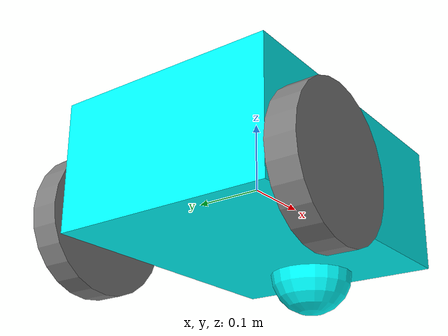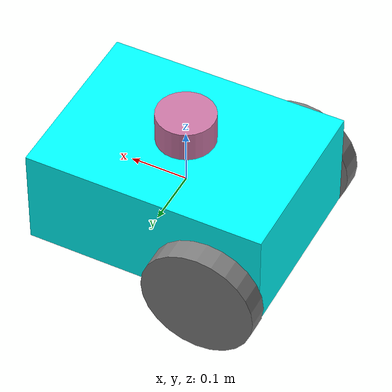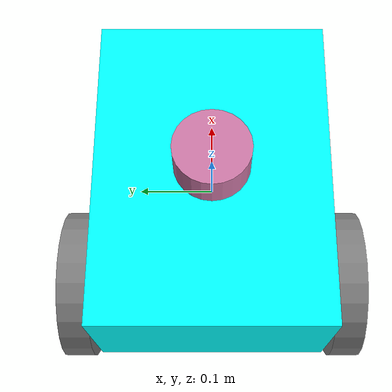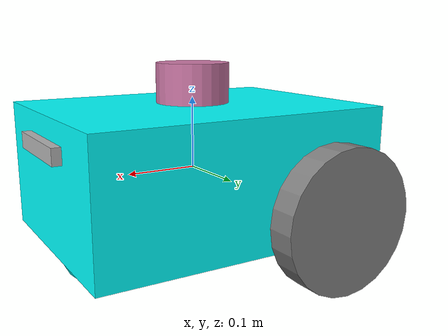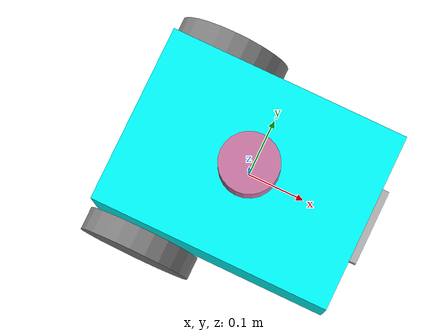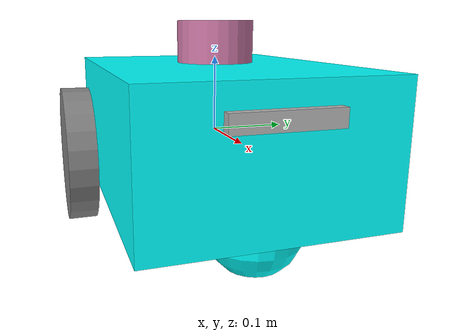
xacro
<?xml version="1.0"?>
<robot xmlns:xacro="http://www.ros.org/wiki/xacro" name="robot_2wd">

  <!-- Robot Model-->
  <xacro:include filename="robot_model.xacro"/>

  <!-- Control Plugins -->

  <!-- Gazebo Controller -->
  <xacro:include filename="control/gazebo_control.xacro"/>

  <!-- Gazebo2 Controller -->

  <!-- Sensor Plugins -->

  <!-- IMU gazebo plugin -->
  <xacro:include filename="sensors/gazebo_imu.xacro"/>

  <!-- Lidar 2D -->
  <xacro:include filename="sensors/gazebo_lidar.xacro"/>

  <!-- Camera -->

  <!-- Depth Camera -->
  <xacro:include filename="sensors/gazebo_depth_camera.xacro"/>

</robot>

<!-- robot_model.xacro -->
<robot xmlns:xacro="http://www.ros.org/wiki/xacro" >

    <!-- Including files -->

    <!-- Include material colors -->
    <xacro:include filename="material.xacro"/>
    <!-- Include inertial macros -->
    <xacro:include filename="macros/inertial.xacro"/>
    <!-- Include wheel macros -->
    <xacro:include filename="macros/wheel.xacro"/>

    <!-- Define robot constants -->

    <!-- Robot base constants -->
    <xacro:property name="base_width" value="0.31"/>
    <xacro:property name="base_length" value="0.42"/>
    <xacro:property name="base_height" value="0.18"/>
    <!-- Robot wheels constants -->
    <xacro:property name="wheel_radius" value="0.10"/>
    <xacro:property name="wheel_width" value="0.04"/>
    <xacro:property name="wheel_ygap" value="0.025"/>
    <xacro:property name="wheel_zoff" value="0.05"/>
    <xacro:property name="wheel_xoff" value="0.12"/>
    <!-- Castor wheels constats -->
    <xacro:property name="caster_xoff" value="0.14"/>

    <!-- Robot Base -->
    <link name="base_link">
        <visual>
        <geometry>
            <box size="${base_length} ${base_width} ${base_height}"/>
        </geometry>
        <material name="Cyan">
            <color rgba="0 1.0 1.0 1.0"/>
        </material>
        </visual>
        <collision>
            <geometry>
                <box size="${base_length} ${base_width} ${base_height}"/>
            </geometry>
        </collision>
        <xacro:box_inertia mass="15" width="${base_width}" length="${base_length}" height="${base_height}"/>
    </link>

    <!-- Robot Footprint -->
    <link name="base_footprint"/>

    <joint name="base_joint" type="fixed">
        <parent link="base_link"/>
        <child link="base_footprint"/>
        <origin xyz="0.0 0.0 ${-(wheel_radius+wheel_zoff)}" rpy="0 0 0"/>
    </joint>

    <!-- Caster Wheel -->
    <link name="front_caster">
        <visual>
        <geometry>
            <sphere radius="${(wheel_radius+wheel_zoff-(base_height/2))}"/>
        </geometry>
        <material name="Cyan">
            <color rgba="0 1.0 1.0 1.0"/>
        </material>
        </visual>
        <collision>
            <origin xyz="0 0 0" rpy="0 0 0"/>
            <geometry>
                <sphere radius="${(wheel_radius+wheel_zoff-(base_height/2))}"/>
            </geometry>
        </collision>
        <xacro:sphere_inertia mass="0.5" radius="${(wheel_radius+wheel_zoff-(base_height/2))}"/>
    </link>

    <joint name="caster_joint" type="fixed">
        <parent link="base_link"/>
        <child link="front_caster"/>
        <origin xyz="${caster_xoff} 0.0 ${-(base_height/2)}" rpy="0 0 0"/>
    </joint>

    <!-- Wheels -->
    <xacro:wheel prefix="left_wheel" x_reflect="-1" y_reflect="1" />
    <xacro:wheel prefix="right_wheel" x_reflect="-1" y_reflect="-1" />

</robot>

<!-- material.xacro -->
<robot xmlns:xacro="http://www.ros.org/wiki/xacro" name="robot_dd">

  <material name="black">
    <color rgba="0.0 0.0 0.0 1.0"/>
  </material>

  <material name="dark">
    <color rgba="0.3 0.3 0.3 1.0"/>
  </material>

  <material name="light_black">
    <color rgba="0.4 0.4 0.4 1.0"/>
  </material>

  <material name="blue">
    <color rgba="0.0 0.0 0.8 1.0"/>
  </material>

  <material name="green">
    <color rgba="0.0 0.8 0.0 1.0"/>
  </material>

  <material name="grey">
    <color rgba="0.5 0.5 0.5 1.0"/>
  </material>

  <material name="orange">
    <color rgba="1.0 0.4235 0.0392 1.0"/>
  </material>

  <material name="brown">
    <color rgba="0.8706 0.8118 0.7647 1.0"/>
  </material>

  <material name="red">
    <color rgba="0.8 0.0 0.0 1.0"/>
  </material>

  <material name="white">
    <color rgba="1.0 1.0 1.0 1.0"/>
  </material>

</robot>

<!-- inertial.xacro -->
<robot xmlns:xacro="http://www.ros.org/wiki/xacro" >

    <!-- Specify some standard inertial calculations https://en.wikipedia.org/wiki/List_of_moments_of_inertia -->
    <!-- These make use of xacro's mathematical functionality -->

    <xacro:macro name="sphere_inertia" params="mass radius">
        <inertial>
            <mass value="${mass}" />
            <inertia ixx="${(2/5) * mass * (radius*radius)}" ixy="0.0" ixz="0.0"
                    iyy="${(2/5) * mass * (radius*radius)}" iyz="0.0"
                    izz="${(2/5) * mass * (radius*radius)}" />
        </inertial>
    </xacro:macro>

    <xacro:macro name="box_inertia" params="mass width height length">
        <inertial>
            <mass value="${mass}" />
            <inertia ixx="${(1/12) * mass * (height*height + length*length)}" ixy="0.0" ixz="0.0"
                    iyy="${(1/12) * mass * (width*width +  length*length)}" iyz="0.0"
                    izz="${(1/12) * mass * (width*width + height*height)}" />
        </inertial>
    </xacro:macro>

    <xacro:macro name="cyclinder_inertia" params="mass height radius">
        <inertial>
            <mass value="${mass}" />
            <inertia ixx="${(1/12) * mass * (3*radius*radius + height*height)}" ixy="0.0" ixz="0.0"
                    iyy="${(1/12) * mass * (3*radius*radius + height*height)}" iyz="0.0"
                    izz="${(1/2) * mass * (radius*radius)}" />
        </inertial>
    </xacro:macro>

</robot>

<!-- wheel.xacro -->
<robot xmlns:xacro="http://www.ros.org/wiki/xacro">

    <!-- Wheels -->
    <xacro:macro name="wheel" params="prefix x_reflect y_reflect">
        <link name="${prefix}_link">
        <visual>
            <origin xyz="0 0 0" rpy="${pi/2} 0 0"/>
            <geometry>
                <cylinder radius="${wheel_radius}" length="${wheel_width}"/>
            </geometry>
            <material name="Gray">
            <color rgba="0.5 0.5 0.5 1.0"/>
            </material>
        </visual>
        <collision>
            <origin xyz="0 0 0" rpy="${pi/2} 0 0"/>
            <geometry>
            <cylinder radius="${wheel_radius}" length="${wheel_width}"/>
            </geometry>
        </collision>
        <xacro:cyclinder_inertia mass="0.5" radius="${wheel_radius}" height="${wheel_width}"/>
        </link>

        <joint name="${prefix}_joint" type="continuous">
        <parent link="base_link"/>
        <child link="${prefix}_link"/>
        <origin xyz="${x_reflect*wheel_xoff} ${y_reflect*(base_width/2+wheel_ygap)} ${-wheel_zoff}" rpy="0 0 0"/>
        <axis xyz="0 1 0"/>
        </joint>
    </xacro:macro>

</robot>

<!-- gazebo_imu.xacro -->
<robot xmlns:xacro="http://www.ros.org/wiki/xacro" >

    <link name="imu_link">
        <visual>
            <geometry>
                <box size="0.1 0.1 0.1"/>
            </geometry>
        </visual>

        <collision>
            <geometry>
                <box size="0.1 0.1 0.1"/>
            </geometry>
        </collision>

        <xacro:box_inertia mass="0.1" width="0.1" length="0.1" height="0.1"/>
    </link>

    <joint name="imu_joint" type="fixed">
        <parent link="base_link"/>
        <child link="imu_link"/>
        <origin xyz="0 0 0.01"/>
    </joint>

    <gazebo reference="imu_link">
        <sensor name="imu_sensor" type="imu">
        <plugin filename="libgazebo_ros_imu_sensor.so" name="imu_plugin">
            <initial_orientation_as_reference>false</initial_orientation_as_reference>
        </plugin>
        <always_on>true</always_on>
        <update_rate>100</update_rate>
        <visualize>true</visualize>
        <imu>
            <angular_velocity>
                <x>
                <noise type="gaussian">
                    <mean>0.0</mean>
                    <stddev>2e-4</stddev>
                    <bias_mean>0.0000075</bias_mean>
                    <bias_stddev>0.0000008</bias_stddev>
                </noise>
                </x>
                <y>
                <noise type="gaussian">
                    <mean>0.0</mean>
                    <stddev>2e-4</stddev>
                    <bias_mean>0.0000075</bias_mean>
                    <bias_stddev>0.0000008</bias_stddev>
                </noise>
                </y>
                <z>
                <noise type="gaussian">
                    <mean>0.0</mean>
                    <stddev>2e-4</stddev>
                    <bias_mean>0.0000075</bias_mean>
                    <bias_stddev>0.0000008</bias_stddev>
                </noise>
                </z>
            </angular_velocity>
            <linear_acceleration>
                <x>
                <noise type="gaussian">
                    <mean>0.0</mean>
                    <stddev>1.7e-2</stddev>
                    <bias_mean>0.1</bias_mean>
                    <bias_stddev>0.001</bias_stddev>
                </noise>
                </x>
                <y>
                <noise type="gaussian">
                    <mean>0.0</mean>
                    <stddev>1.7e-2</stddev>
                    <bias_mean>0.1</bias_mean>
                    <bias_stddev>0.001</bias_stddev>
                </noise>
                </y>
                <z>
                <noise type="gaussian">
                    <mean>0.0</mean>
                    <stddev>1.7e-2</stddev>
                    <bias_mean>0.1</bias_mean>
                    <bias_stddev>0.001</bias_stddev>
                </noise>
                </z>
            </linear_acceleration>
        </imu>
    </sensor>
</gazebo>

</robot>

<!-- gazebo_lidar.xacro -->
<robot xmlns:xacro="http://www.ros.org/wiki/xacro" >

    <link name="lidar_link">
        <inertial>
            <origin xyz="0 0 0" rpy="0 0 0"/>
            <mass value="0.125"/>
            <inertia ixx="0.001"  ixy="0"  ixz="0" iyy="0.001" iyz="0" izz="0.001" />
        </inertial>

        <collision>
            <origin xyz="0 0 0" rpy="0 0 0"/>
            <geometry>
            <cylinder radius="0.0508" length="0.055"/>
            </geometry>
        </collision>

        <visual>
            <origin xyz="0 0 0" rpy="0 0 0"/>
            <geometry>
            <cylinder radius="0.0508" length="0.055"/>
            </geometry>
        </visual>
    </link>

    <joint name="lidar_joint" type="fixed">
        <parent link="base_link"/>
        <child link="lidar_link"/>
        <origin xyz="0 0 0.12" rpy="0 0 0"/>
    </joint>

    <gazebo reference="lidar_link">
        <sensor name="lidar" type="ray">
            <always_on>true</always_on>
            <visualize>true</visualize>
            <update_rate>5</update_rate>
            <ray>
                <scan>
                    <horizontal>
                    <samples>360</samples>
                    <resolution>1.000000</resolution>
                    <min_angle>0.000000</min_angle>
                    <max_angle>6.280000</max_angle>
                    </horizontal>
                </scan>
                <range>
                    <min>0.120000</min>
                    <max>3.5</max>
                    <resolution>0.015000</resolution>
                </range>
                <noise>
                    <type>gaussian</type>
                    <mean>0.0</mean>
                    <stddev>0.01</stddev>
                </noise>
            </ray>
            <plugin name="scan" filename="libgazebo_ros_ray_sensor.so">
                <output_type>sensor_msgs/LaserScan</output_type>
                <frame_name>lidar_link</frame_name>
            </plugin>
        </sensor>
    </gazebo>

</robot>

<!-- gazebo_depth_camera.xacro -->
<robot xmlns:xacro="http://www.ros.org/wiki/xacro">

    <link name="camera_link">
        <visual>
            <origin xyz="0 0 0" rpy="0 0 0"/>
            <geometry>
            <box size="0.015 0.130 0.022"/>
            </geometry>
        </visual>

        <collision>
            <origin xyz="0 0 0" rpy="0 0 0"/>
            <geometry>
            <box size="0.015 0.130 0.022"/>
            </geometry>
        </collision>

        <inertial>
            <origin xyz="0 0 0" rpy="0 0 0"/>
            <mass value="0.035"/>
            <inertia ixx="0.001"  ixy="0"  ixz="0" iyy="0.001" iyz="0" izz="0.001" />
        </inertial>
    </link>

    <joint name="camera_joint" type="fixed">
    <parent link="base_link"/>
    <child link="camera_link"/>
    <origin xyz="0.215 0 0.05" rpy="0 0 0"/>
    </joint>

    <link name="camera_depth_frame"/>

    <joint name="camera_depth_joint" type="fixed">
    <origin xyz="0 0 0" rpy="${-pi/2} 0 ${-pi/2}"/>
    <parent link="camera_link"/>
    <child link="camera_depth_frame"/>
    </joint>

    <gazebo reference="camera_link">
        <sensor name="depth_camera" type="depth">
            <visualize>true</visualize>
            <update_rate>30.0</update_rate>
            <camera name="camera">
            <horizontal_fov>1.047198</horizontal_fov>
            <image>
                <width>640</width>
                <height>480</height>
                <format>R8G8B8</format>
            </image>
            <clip>
                <near>0.05</near>
                <far>3</far>
            </clip>
            </camera>
            <plugin name="depth_camera_controller" filename="libgazebo_ros_camera.so">
            <baseline>0.2</baseline>
            <alwaysOn>true</alwaysOn>
            <updateRate>0.0</updateRate>
            <frame_name>camera_depth_frame</frame_name>
            <pointCloudCutoff>0.5</pointCloudCutoff>
            <pointCloudCutoffMax>3.0</pointCloudCutoffMax>
            <distortionK1>0</distortionK1>
            <distortionK2>0</distortionK2>
            <distortionK3>0</distortionK3>
            <distortionT1>0</distortionT1>
            <distortionT2>0</distortionT2>
            <CxPrime>0</CxPrime>
            <Cx>0</Cx>
            <Cy>0</Cy>
            <focalLength>0</focalLength>
            <hackBaseline>0</hackBaseline>
            </plugin>
        </sensor>
    </gazebo>

</robot>
